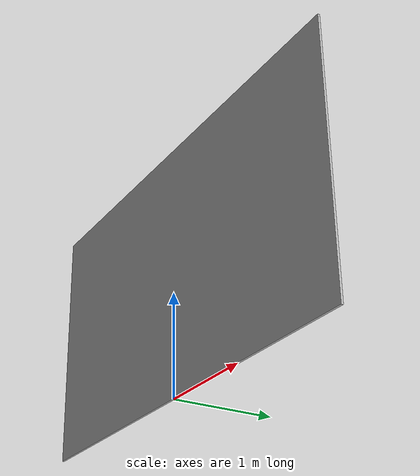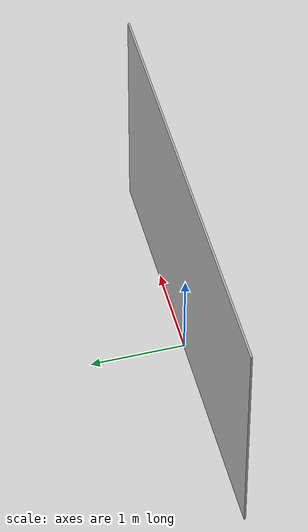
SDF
<?xml version='1.0'?>
<sdf version="1.4">
<model name="MiniMarsWallNorth">
  <pose>0 0 1.25 0 0 0</pose>
  <static>true</static>
    <link name="link">
      <collision name="collision">
        <geometry>
          <box>
            <size>4.57 0.02 2.5</size>
          </box>
        </geometry>
      </collision>
      <visual name="visual">
        <geometry>
          <box>
            <size>4.57 0.02 2.5</size>
          </box>
        </geometry>
		       <material>
			<script>
        <uri>model://MiniMarsWallNorth/materials/scripts</uri>
        <uri>model://MiniMarsWallNorth/materials/textures</uri>
        <name>MiniMarsWall/Image</name>
      </script>
        	</material>
      </visual>
    </link>
  </model>
</sdf>
